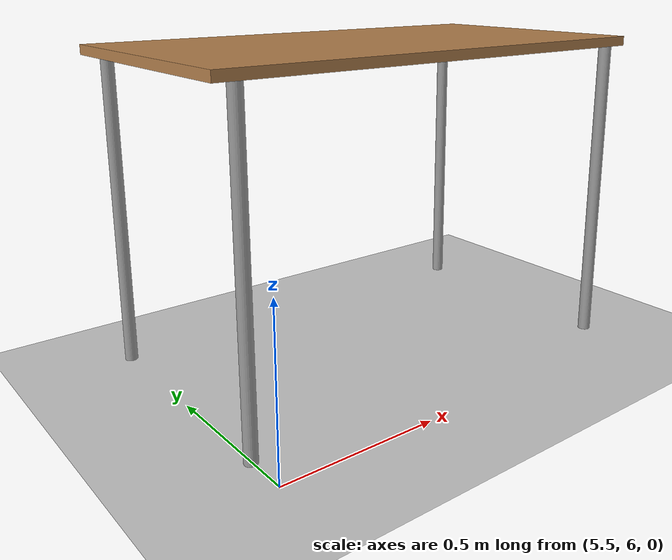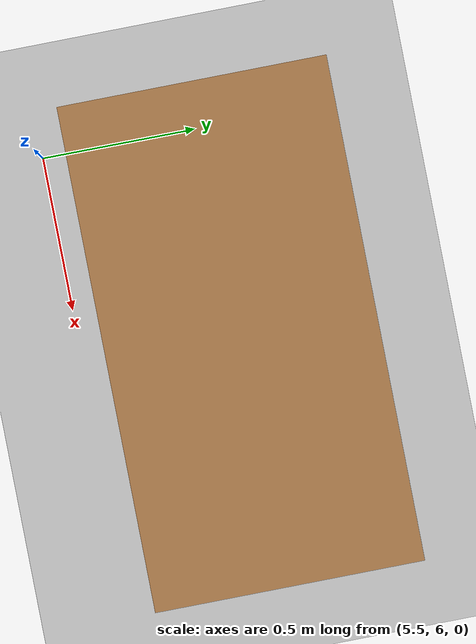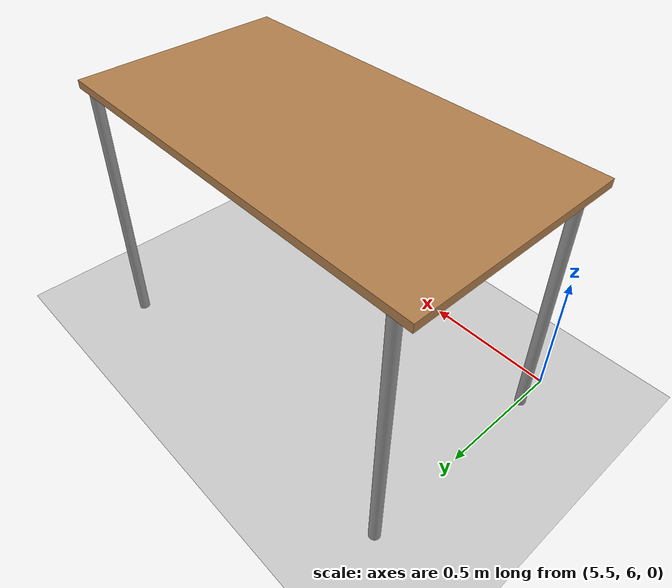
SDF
<sdf version="1.7">
 <world name="default">
  <model name="ground_plane">
   <static>1</static>
   <link name="link1">
    <collision name="collision">
     <geometry><plane><normal>0 0 1</normal><size>100 100</size></plane></geometry>
     <surface>
      <contact><collide_bitmask>65535</collide_bitmask></contact>
      <friction><ode><mu>100</mu><mu2>50</mu2></ode></friction>
     </surface>
    </collision>
    <visual name="visual">
     <cast_shadows>0</cast_shadows>
     <geometry><plane><normal>0 0 1</normal><size>100 100</size></plane></geometry>
     <material>
      <script><uri>file://media/materials/scripts/gazebo.material</uri><name>Gazebo/Grey</name></script>
     </material>
    </visual>
   </link>
  </model>
  <model name="Table_clone">
   <static>1</static>
   <link name="Table_clone_link_dup">
    <collision name="surface">
     <pose>0 0 1 0 -0 0</pose>
     <geometry><box><size>1.5 0.8 0.03</size></box></geometry>
     <surface><friction><ode><mu>0.6</mu><mu2>0.6</mu2></ode></friction></surface>
    </collision>
    <visual name="visual1">
     <pose>0 0 1 0 -0 0</pose>
     <geometry><box><size>1.5 0.8 0.03</size></box></geometry>
     <material>
      <diffuse>1 1 1 1</diffuse>
      <script><uri>file://media/materials/scripts/gazebo.material</uri><name>Gazebo/Wood</name></script>
      <pbr>
       <metal>
        <albedo_map>https://fuel.ignitionrobotics.org/1.0/openrobotics/models/table/3/files/Table_Diffuse.jpg</albedo_map>
       </metal>
      </pbr>
     </material>
    </visual>
    <collision name="front_left_leg">
     <pose>0.68 0.38 0.5 0 -0 0</pose>
     <geometry><cylinder><radius>0.02</radius><length>1</length></cylinder></geometry>
    </collision>
    <visual name="front_left_leg">
     <pose>0.68 0.38 0.5 0 -0 0</pose>
     <geometry><cylinder><radius>0.02</radius><length>1</length></cylinder></geometry>
     <material>
      <diffuse>0.5 0.5 0.5 1</diffuse>
      <script><uri>file://media/materials/scripts/gazebo.material</uri><name>Gazebo/Grey</name></script>
     </material>
    </visual>
    <collision name="front_right_leg">
     <pose>0.68 -0.38 0.5 0 -0 0</pose>
     <geometry><cylinder><radius>0.02</radius><length>1</length></cylinder></geometry>
    </collision>
    <visual name="front_right_leg">
     <pose>0.68 -0.38 0.5 0 -0 0</pose>
     <geometry><cylinder><radius>0.02</radius><length>1</length></cylinder></geometry>
     <material>
      <diffuse>0.5 0.5 0.5 1</diffuse>
      <script><uri>file://media/materials/scripts/gazebo.material</uri><name>Gazebo/Grey</name></script>
     </material>
    </visual>
    <collision name="back_right_leg">
     <pose>-0.68 -0.38 0.5 0 -0 0</pose>
     <geometry><cylinder><radius>0.02</radius><length>1</length></cylinder></geometry>
    </collision>
    <visual name="back_right_leg">
     <pose>-0.68 -0.38 0.5 0 -0 0</pose>
     <geometry><cylinder><radius>0.02</radius><length>1</length></cylinder></geometry>
     <material>
      <diffuse>0.5 0.5 0.5 1</diffuse>
      <script><uri>file://media/materials/scripts/gazebo.material</uri><name>Gazebo/Grey</name></script>
     </material>
    </visual>
    <collision name="back_left_leg">
     <pose>-0.68 0.38 0.5 0 -0 0</pose>
     <geometry><cylinder><radius>0.02</radius><length>1</length></cylinder></geometry>
    </collision>
    <visual name="back_left_leg">
     <pose>-0.68 0.38 0.5 0 -0 0</pose>
     <geometry><cylinder><radius>0.02</radius><length>1</length></cylinder></geometry>
     <material>
      <diffuse>0.5 0.5 0.5 1</diffuse>
      <script><uri>file://media/materials/scripts/gazebo.material</uri><name>Gazebo/Grey</name></script>
     </material>
    </visual>
   </link>
   <pose>6.17799 6.51368 0 0 -0 0</pose>
  </model>
 </world>
</sdf>
